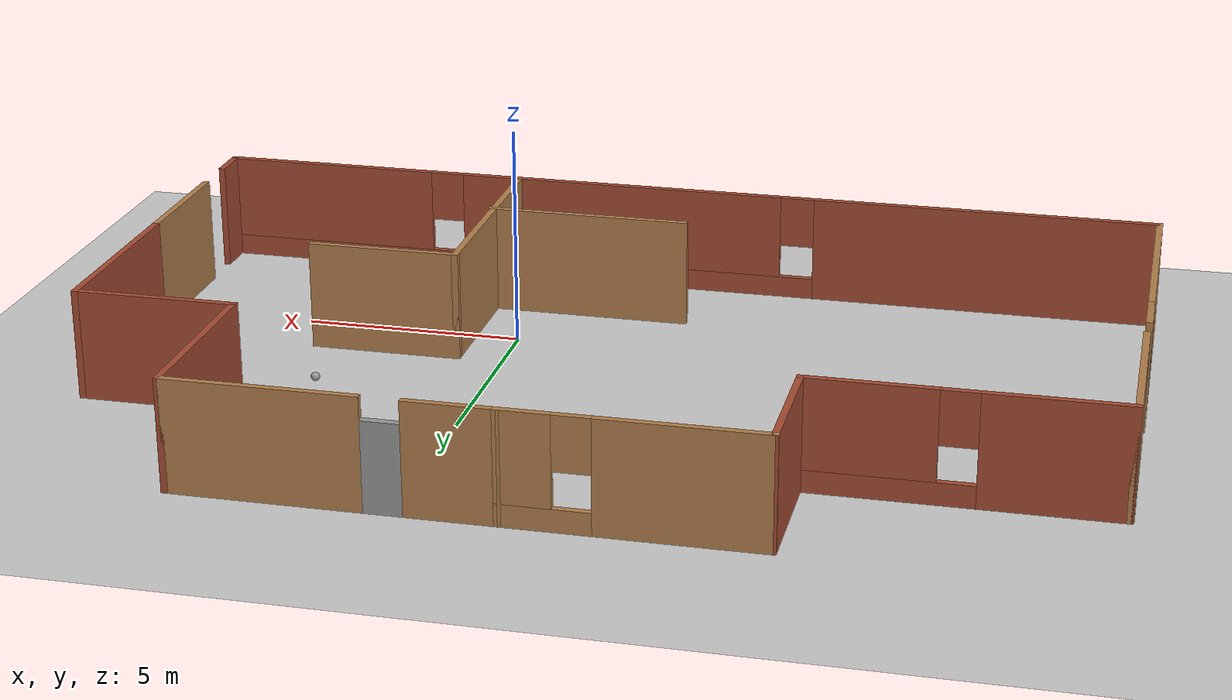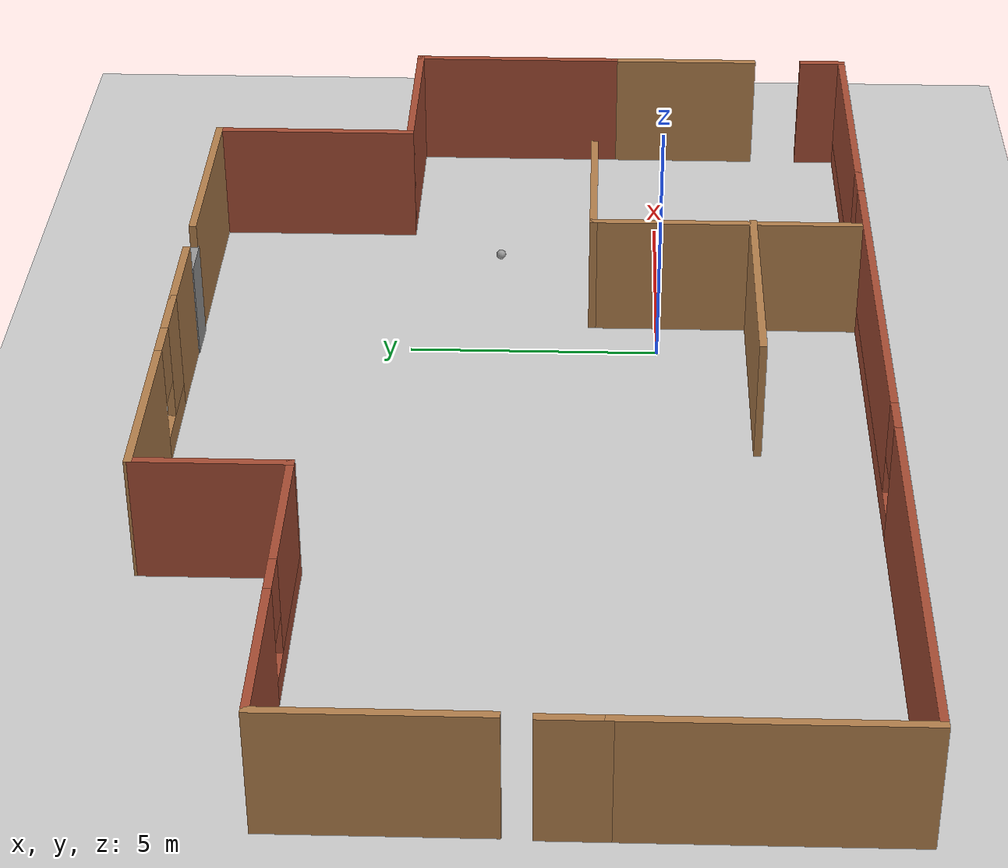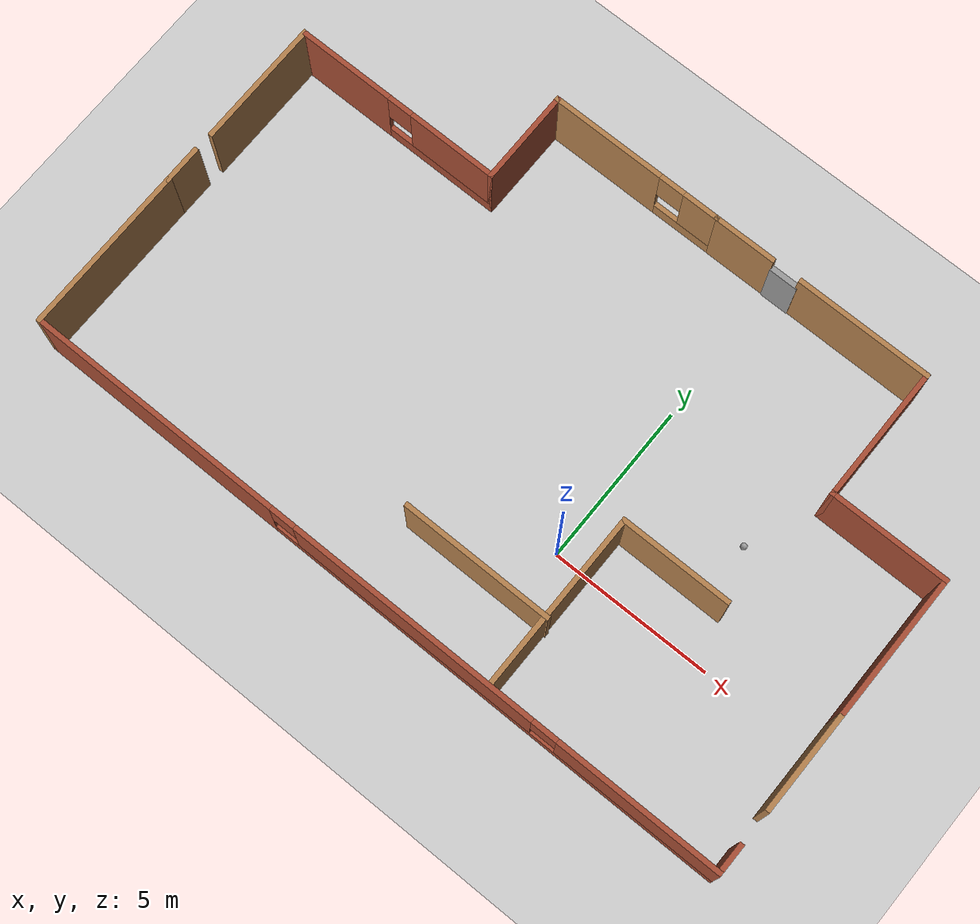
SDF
<sdf version="1.6">
 <world name="default">
  <plugin name="welcome_message" filename="libwelcome_message.so"/>
  <light name="sun" type="directional">
   <pose>0 0 10 0 -0 0</pose>
   <diffuse>0.8 0.8 0.8 1</diffuse>
   <specular>0.2 0.2 0.2 1</specular>
   <attenuation>
    <range>1000</range>
    <constant>0.9</constant>
    <linear>0.01</linear>
    <quadratic>0.001</quadratic>
   </attenuation>
   <direction>-0.5 0.1 -0.9</direction>
  </light>
  <model name="ground_plane">
   <static>1</static>
   <link name="link">
    <collision name="collision">
     <geometry><plane><normal>0 0 1</normal><size>100 100</size></plane></geometry>
     <surface>
      <contact><collide_bitmask>65535</collide_bitmask></contact>
      <friction><ode><mu>100</mu><mu2>50</mu2></ode></friction>
     </surface>
    </collision>
    <visual name="visual">
     <cast_shadows>0</cast_shadows>
     <geometry><plane><normal>0 0 1</normal><size>100 100</size></plane></geometry>
     <material>
      <script><uri>file://media/materials/scripts/gazebo.material</uri><name>Gazebo/Grey</name></script>
     </material>
    </visual>
   </link>
  </model>
  <gravity>0 0 -9.8</gravity>
  <magnetic_field>6e-06 2.3e-05 -4.2e-05</magnetic_field>
  <atmosphere type="adiabatic"/>
  <physics name="default_physics" default="0" type="ode">
   <max_step_size>0.001</max_step_size>
   <real_time_factor>1</real_time_factor>
   <real_time_update_rate>1000</real_time_update_rate>
  </physics>
  <scene><ambient>0.4 0.4 0.4 1</ambient><background>0.7 0.7 0.7 1</background><shadows>1</shadows></scene>
  <spherical_coordinates>
   <surface_model>EARTH_WGS84</surface_model>
   <latitude_deg>0</latitude_deg>
   <longitude_deg>0</longitude_deg>
   <elevation>0</elevation>
   <heading_deg>0</heading_deg>
  </spherical_coordinates>
  <model name="layout_bare">
   <pose>-2.93829 2.61568 0 0 -0 0</pose>
   <link name="Door_2">
    <collision name="Door_2_Collision">
     <geometry><box><size>0.9 0.17 2</size></box></geometry>
     <pose>0 0 1 0 -0 0</pose>
    </collision>
    <visual name="Door_2_Visual">
     <pose>0 0 1 0 -0 0</pose>
     <geometry><box><size>0.9 0.17 2</size></box></geometry>
     <material>
      <script><uri>file://media/materials/scripts/gazebo.material</uri><name>Gazebo/Grey</name></script>
     </material>
    </visual>
    <pose>3.13116 6.76354 0 0 -0 0</pose>
   </link>
   <link name="Wall_10">
    <collision name="Wall_10_Collision">
     <geometry><box><size>4.25 0.15 2.5</size></box></geometry>
     <pose>0 0 1.25 0 -0 0</pose>
    </collision>
    <visual name="Wall_10_Visual">
     <pose>0 0 1.25 0 -0 0</pose>
     <geometry><box><size>4.25 0.15 2.5</size></box></geometry>
     <material>
      <script><uri>file://media/materials/scripts/gazebo.material</uri><name>Gazebo/Wood</name></script>
      <ambient>1 1 1 1</ambient>
     </material>
     <meta><layer>0</layer></meta>
    </visual>
    <pose>5.65 6.77497 0 0 -0 0</pose>
   </link>
   <link name="Wall_11">
    <collision name="Wall_11_Collision">
     <geometry><box><size>4.25 0.15 2.5</size></box></geometry>
     <pose>0 0 1.25 0 -0 0</pose>
    </collision>
    <visual name="Wall_11_Visual">
     <pose>0 0 1.25 0 -0 0</pose>
     <geometry><box><size>4.25 0.15 2.5</size></box></geometry>
     <material>
      <script><uri>file://media/materials/scripts/gazebo.material</uri><name>Gazebo/Bricks</name></script>
      <ambient>1 1 1 1</ambient>
     </material>
     <meta><layer>0</layer></meta>
    </visual>
    <pose>7.7 4.72497 0 0 0 -1.5708</pose>
   </link>
   <link name="Wall_12">
    <collision name="Wall_12_Collision">
     <geometry><box><size>3.75 0.15 2.5</size></box></geometry>
     <pose>0 0 1.25 0 -0 0</pose>
    </collision>
    <visual name="Wall_12_Visual">
     <pose>0 0 1.25 0 -0 0</pose>
     <geometry><box><size>3.75 0.15 2.5</size></box></geometry>
     <material>
      <script><uri>file://media/materials/scripts/gazebo.material</uri><name>Gazebo/Bricks</name></script>
      <ambient>1 1 1 1</ambient>
     </material>
     <meta><layer>0</layer></meta>
    </visual>
    <pose>9.5 2.67497 0 0 -0 0</pose>
   </link>
   <link name="Wall_13">
    <collision name="Wall_13_Collision">
     <geometry><box><size>4.5 0.15 2.5</size></box></geometry>
     <pose>0 0 1.25 0 -0 0</pose>
    </collision>
    <visual name="Wall_13_Visual">
     <pose>0 0 1.25 0 -0 0</pose>
     <geometry><box><size>4.5 0.15 2.5</size></box></geometry>
     <material>
      <script><uri>file://media/materials/scripts/gazebo.material</uri><name>Gazebo/Bricks</name></script>
      <ambient>1 1 1 1</ambient>
     </material>
     <meta><layer>0</layer></meta>
    </visual>
    <pose>11.3 0.499974 0 0 0 -1.5708</pose>
   </link>
   <link name="Wall_15">
    <collision name="Wall_15_Collision">
     <geometry><box><size>1.25 0.15 2.5</size></box></geometry>
     <pose>0 0 1.25 0 -0 0</pose>
    </collision>
    <visual name="Wall_15_Visual">
     <pose>0 0 1.25 0 -0 0</pose>
     <geometry><box><size>1.25 0.15 2.5</size></box></geometry>
     <material>
      <script><uri>file://media/materials/scripts/gazebo.material</uri><name>Gazebo/Wood</name></script>
      <ambient>1 1 1 1</ambient>
     </material>
     <meta><layer>0</layer></meta>
    </visual>
    <pose>-11.3 -1.12503 0 0 -0 1.5708</pose>
   </link>
   <link name="Wall_17">
    <collision name="Wall_17_Collision">
     <geometry><box><size>4 0.15 2.5</size></box></geometry>
     <pose>0 0 1.25 0 -0 0</pose>
    </collision>
    <visual name="Wall_17_Visual">
     <pose>0 0 1.25 0 -0 0</pose>
     <geometry><box><size>4 0.15 2.5</size></box></geometry>
     <material>
      <script><uri>file://media/materials/scripts/gazebo.material</uri><name>Gazebo/Wood</name></script>
      <ambient>1 1 1 1</ambient>
     </material>
     <meta><layer>0</layer></meta>
    </visual>
    <pose>-11.2701 1.99614 0 0 -0 1.5708</pose>
   </link>
   <link name="Wall_18">
    <pose>-7.97011 3.92114 0 0 -0 0</pose>
    <visual name="Wall_18_Visual_0">
     <pose>-1.82628 0 1.25 0 -0 0</pose>
     <geometry><box><size>3.09743 0.15 2.5</size></box></geometry>
     <material>
      <script><uri>file://media/materials/scripts/gazebo.material</uri><name>Gazebo/Bricks</name></script>
      <ambient>1 1 1 1</ambient>
     </material>
     <meta><layer>0</layer></meta>
    </visual>
    <collision name="Wall_18_Collision_0">
     <geometry><box><size>3.09743 0.15 2.5</size></box></geometry>
     <pose>-1.82628 0 1.25 0 -0 0</pose>
    </collision>
    <visual name="Wall_18_Visual_1">
     <pose>1.54872 0 0.25 0 -0 0</pose>
     <geometry><box><size>3.65257 0.15 0.5</size></box></geometry>
     <material>
      <script><uri>file://media/materials/scripts/gazebo.material</uri><name>Gazebo/Bricks</name></script>
      <ambient>1 1 1 1</ambient>
     </material>
     <meta><layer>0</layer></meta>
    </visual>
    <collision name="Wall_18_Collision_1">
     <geometry><box><size>3.65257 0.15 0.5</size></box></geometry>
     <pose>1.54872 0 0.25 0 -0 0</pose>
    </collision>
    <visual name="Wall_18_Visual_2">
     <pose>1.94872 0 1.5 0 -0 0</pose>
     <geometry><box><size>2.85256 0.15 2</size></box></geometry>
     <material>
      <script><uri>file://media/materials/scripts/gazebo.material</uri><name>Gazebo/Bricks</name></script>
      <ambient>1 1 1 1</ambient>
     </material>
     <meta><layer>0</layer></meta>
    </visual>
    <collision name="Wall_18_Collision_2">
     <geometry><box><size>2.85256 0.15 2</size></box></geometry>
     <pose>1.94872 0 1.5 0 -0 0</pose>
    </collision>
    <visual name="Wall_18_Visual_3">
     <pose>0.122435 0 1.9 0 -0 0</pose>
     <geometry><box><size>0.8 0.15 1.2</size></box></geometry>
     <material>
      <script><uri>file://media/materials/scripts/gazebo.material</uri><name>Gazebo/Bricks</name></script>
      <ambient>1 1 1 1</ambient>
     </material>
     <meta><layer>0</layer></meta>
    </visual>
    <collision name="Wall_18_Collision_3">
     <geometry><box><size>0.8 0.15 1.2</size></box></geometry>
     <pose>0.122435 0 1.9 0 -0 0</pose>
    </collision>
   </link>
   <link name="Wall_19">
    <collision name="Wall_19_Collision">
     <geometry><box><size>3 0.15 2.5</size></box></geometry>
     <pose>0 0 1.25 0 -0 0</pose>
    </collision>
    <visual name="Wall_19_Visual">
     <pose>0 0 1.25 0 -0 0</pose>
     <geometry><box><size>3 0.15 2.5</size></box></geometry>
     <material>
      <script><uri>file://media/materials/scripts/gazebo.material</uri><name>Gazebo/Bricks</name></script>
      <ambient>1 1 1 1</ambient>
     </material>
     <meta><layer>0</layer></meta>
    </visual>
    <pose>-4.67011 5.34614 0 0 -0 1.5708</pose>
   </link>
   <link name="Wall_21">
    <pose>-1.94728 6.77306 0 0 -0 0.000703</pose>
    <visual name="Wall_21_Visual_0">
     <pose>-0.986881 0 1.25 0 -0 0</pose>
     <geometry><box><size>3.62188 0.15 2.5</size></box></geometry>
     <material>
      <script><uri>file://media/materials/scripts/gazebo.material</uri><name>Gazebo/Wood</name></script>
      <ambient>1 1 1 1</ambient>
     </material>
     <meta><layer>0</layer></meta>
    </visual>
    <collision name="Wall_21_Collision_0">
     <geometry><box><size>3.62188 0.15 2.5</size></box></geometry>
     <pose>-0.986881 0 1.25 0 -0 0</pose>
    </collision>
    <visual name="Wall_21_Visual_1">
     <pose>1.81094 0 0.25 0 -0 0</pose>
     <geometry><box><size>1.97376 0.15 0.5</size></box></geometry>
     <material>
      <script><uri>file://media/materials/scripts/gazebo.material</uri><name>Gazebo/Wood</name></script>
      <ambient>1 1 1 1</ambient>
     </material>
     <meta><layer>0</layer></meta>
    </visual>
    <collision name="Wall_21_Collision_1">
     <geometry><box><size>1.97376 0.15 0.5</size></box></geometry>
     <pose>1.81094 0 0.25 0 -0 0</pose>
    </collision>
    <visual name="Wall_21_Visual_2">
     <pose>2.21094 0 1.5 0 -0 0</pose>
     <geometry><box><size>1.17376 0.15 2</size></box></geometry>
     <material>
      <script><uri>file://media/materials/scripts/gazebo.material</uri><name>Gazebo/Wood</name></script>
      <ambient>1 1 1 1</ambient>
     </material>
     <meta><layer>0</layer></meta>
    </visual>
    <collision name="Wall_21_Collision_2">
     <geometry><box><size>1.17376 0.15 2</size></box></geometry>
     <pose>2.21094 0 1.5 0 -0 0</pose>
    </collision>
    <visual name="Wall_21_Visual_3">
     <pose>1.22406 0 1.9 0 -0 0</pose>
     <geometry><box><size>0.8 0.15 1.2</size></box></geometry>
     <material>
      <script><uri>file://media/materials/scripts/gazebo.material</uri><name>Gazebo/Wood</name></script>
      <ambient>1 1 1 1</ambient>
     </material>
     <meta><layer>0</layer></meta>
    </visual>
    <collision name="Wall_21_Collision_3">
     <geometry><box><size>0.8 0.15 1.2</size></box></geometry>
     <pose>1.22406 0 1.9 0 -0 0</pose>
    </collision>
   </link>
   <link name="Wall_23">
    <collision name="Wall_23_Collision">
     <geometry><box><size>5.25 0.15 2.5</size></box></geometry>
     <pose>0 0 1.25 0 -0 0</pose>
    </collision>
    <visual name="Wall_23_Visual">
     <pose>0 0 1.25 0 -0 0</pose>
     <geometry><box><size>5.25 0.15 2.5</size></box></geometry>
     <material>
      <script><uri>file://media/materials/scripts/gazebo.material</uri><name>Gazebo/Wood</name></script>
      <ambient>1 1 1 1</ambient>
     </material>
     <meta><layer>0</layer></meta>
    </visual>
    <pose>-11.3 -4.22503 0 0 0 -1.5708</pose>
   </link>
   <link name="Wall_24">
    <pose>0 -6.77503 0 0 -0 0</pose>
    <visual name="Wall_24_Visual_0">
     <pose>-7.31725 0 1.25 0 -0 0</pose>
     <geometry><box><size>8.11549 0.15 2.5</size></box></geometry>
     <material>
      <script><uri>file://media/materials/scripts/gazebo.material</uri><name>Gazebo/Bricks</name></script>
      <ambient>1 1 1 1</ambient>
     </material>
     <meta><layer>0</layer></meta>
    </visual>
    <collision name="Wall_24_Collision_0">
     <geometry><box><size>8.11549 0.15 2.5</size></box></geometry>
     <pose>-7.31725 0 1.25 0 -0 0</pose>
    </collision>
    <visual name="Wall_24_Visual_1">
     <pose>4.05775 0 0.25 0 -0 0</pose>
     <geometry><box><size>14.6345 0.15 0.5</size></box></geometry>
     <material>
      <script><uri>file://media/materials/scripts/gazebo.material</uri><name>Gazebo/Bricks</name></script>
      <ambient>1 1 1 1</ambient>
     </material>
     <meta><layer>0</layer></meta>
    </visual>
    <collision name="Wall_24_Collision_1">
     <geometry><box><size>14.6345 0.15 0.5</size></box></geometry>
     <pose>4.05775 0 0.25 0 -0 0</pose>
    </collision>
    <visual name="Wall_24_Visual_2">
     <pose>1.46491 0 1.5 0 -0 0</pose>
     <geometry><box><size>7.84884 0.15 2</size></box></geometry>
     <material>
      <script><uri>file://media/materials/scripts/gazebo.material</uri><name>Gazebo/Bricks</name></script>
      <ambient>1 1 1 1</ambient>
     </material>
     <meta><layer>0</layer></meta>
    </visual>
    <collision name="Wall_24_Collision_2">
     <geometry><box><size>7.84884 0.15 2</size></box></geometry>
     <pose>1.46491 0 1.5 0 -0 0</pose>
    </collision>
    <visual name="Wall_24_Visual_3">
     <pose>8.78217 0 1.5 0 -0 0</pose>
     <geometry><box><size>5.18567 0.15 2</size></box></geometry>
     <material>
      <script><uri>file://media/materials/scripts/gazebo.material</uri><name>Gazebo/Bricks</name></script>
      <ambient>1 1 1 1</ambient>
     </material>
     <meta><layer>0</layer></meta>
    </visual>
    <collision name="Wall_24_Collision_3">
     <geometry><box><size>5.18567 0.15 2</size></box></geometry>
     <pose>8.78217 0 1.5 0 -0 0</pose>
    </collision>
    <visual name="Wall_24_Visual_4">
     <pose>-2.85951 0 1.9 0 -0 0</pose>
     <geometry><box><size>0.8 0.15 1.2</size></box></geometry>
     <material>
      <script><uri>file://media/materials/scripts/gazebo.material</uri><name>Gazebo/Bricks</name></script>
      <ambient>1 1 1 1</ambient>
     </material>
     <meta><layer>0</layer></meta>
    </visual>
    <collision name="Wall_24_Collision_4">
     <geometry><box><size>0.8 0.15 1.2</size></box></geometry>
     <pose>-2.85951 0 1.9 0 -0 0</pose>
    </collision>
    <visual name="Wall_24_Visual_5">
     <pose>5.78933 0 1.9 0 -0 0</pose>
     <geometry><box><size>0.8 0.15 1.2</size></box></geometry>
     <material>
      <script><uri>file://media/materials/scripts/gazebo.material</uri><name>Gazebo/Bricks</name></script>
      <ambient>1 1 1 1</ambient>
     </material>
     <meta><layer>0</layer></meta>
    </visual>
    <collision name="Wall_24_Collision_5">
     <geometry><box><size>0.8 0.15 1.2</size></box></geometry>
     <pose>5.78933 0 1.9 0 -0 0</pose>
    </collision>
   </link>
   <link name="Wall_25">
    <collision name="Wall_25_Collision">
     <geometry><box><size>1 0.15 2.5</size></box></geometry>
     <pose>0 0 1.25 0 -0 0</pose>
    </collision>
    <visual name="Wall_25_Visual">
     <pose>0 0 1.25 0 -0 0</pose>
     <geometry><box><size>1 0.15 2.5</size></box></geometry>
     <material>
      <script><uri>file://media/materials/scripts/gazebo.material</uri><name>Gazebo/Bricks</name></script>
      <ambient>1 1 1 1</ambient>
     </material>
     <meta><layer>0</layer></meta>
    </visual>
    <pose>11.3 -6.35003 0 0 -0 1.5708</pose>
   </link>
   <link name="Wall_27">
    <collision name="Wall_27_Collision">
     <geometry><box><size>3.25 0.15 2.5</size></box></geometry>
     <pose>0 0 1.25 0 -0 0</pose>
    </collision>
    <visual name="Wall_27_Visual">
     <pose>0 0 1.25 0 -0 0</pose>
     <geometry><box><size>3.25 0.15 2.5</size></box></geometry>
     <material>
      <script><uri>file://media/materials/scripts/gazebo.material</uri><name>Gazebo/Wood</name></script>
      <ambient>1 1 1 1</ambient>
     </material>
     <meta><layer>0</layer></meta>
    </visual>
    <pose>11.3 -3.22503 0 0 0 -1.5708</pose>
   </link>
   <link name="Wall_29">
    <collision name="Wall_29_Collision">
     <geometry><box><size>5.5 0.15 2.5</size></box></geometry>
     <pose>0 0 1.25 0 -0 0</pose>
    </collision>
    <visual name="Wall_29_Visual">
     <pose>0 0 1.25 0 -0 0</pose>
     <geometry><box><size>5.5 0.15 2.5</size></box></geometry>
     <material>
      <script><uri>file://media/materials/scripts/gazebo.material</uri><name>Gazebo/Wood</name></script>
      <ambient>1 1 1 1</ambient>
     </material>
     <meta><layer>0</layer></meta>
    </visual>
    <pose>3.97911 -3.95656 0 0 0 -1.5708</pose>
   </link>
   <link name="Wall_31">
    <collision name="Wall_31_Collision">
     <geometry><box><size>3.5 0.15 2.5</size></box></geometry>
     <pose>0 0 1.25 0 -0 0</pose>
    </collision>
    <visual name="Wall_31_Visual">
     <pose>0 0 1.25 0 -0 0</pose>
     <geometry><box><size>3.5 0.15 2.5</size></box></geometry>
     <material>
      <script><uri>file://media/materials/scripts/gazebo.material</uri><name>Gazebo/Wood</name></script>
      <ambient>1 1 1 1</ambient>
     </material>
     <meta><layer>0</layer></meta>
    </visual>
    <pose>5.65411 -1.28156 0 0 -0 0</pose>
   </link>
   <link name="Wall_33">
    <collision name="Wall_33_Collision">
     <geometry><box><size>4.75 0.15 2.5</size></box></geometry>
     <pose>0 0 1.25 0 -0 0</pose>
    </collision>
    <visual name="Wall_33_Visual">
     <pose>0 0 1.25 0 -0 0</pose>
     <geometry><box><size>4.75 0.15 2.5</size></box></geometry>
     <material>
      <script><uri>file://media/materials/scripts/gazebo.material</uri><name>Gazebo/Wood</name></script>
      <ambient>1 1 1 1</ambient>
     </material>
     <meta><layer>0</layer></meta>
    </visual>
    <pose>1.71934 -4.49974 0 0 -0 3.14159</pose>
   </link>
   <link name="Wall_8">
    <collision name="Wall_8_Collision">
     <geometry><box><size>2 0.15 2.5</size></box></geometry>
     <pose>0 0 1.25 0 -0 0</pose>
    </collision>
    <visual name="Wall_8_Visual">
     <pose>0 0 1.25 0 -0 0</pose>
     <geometry><box><size>2 0.15 2.5</size></box></geometry>
     <material>
      <script><uri>file://media/materials/scripts/gazebo.material</uri><name>Gazebo/Wood</name></script>
      <ambient>1 1 1 1</ambient>
     </material>
     <meta><layer>0</layer></meta>
    </visual>
    <pose>1.70054 6.77497 0 0 -0 0</pose>
   </link>
   <static>1</static>
  </model>
  <model name="my_ball">
   <link name="link_0">
    <inertial>
     <mass>1</mass>
     <inertia><ixx>0.1</ixx><ixy>0</ixy><ixz>0</ixz><iyy>0.1</iyy><iyz>0</iyz><izz>0.1</izz></inertia>
    </inertial>
    <visual name="visual">
     <geometry><sphere><radius>0.1</radius></sphere></geometry>
     <material>
      <lighting>1</lighting>
      <script><uri>file://media/materials/scripts/gazebo.material</uri><name>Gazebo/Grey</name></script>
      <shader type="pixel"><normal_map>__default__</normal_map></shader>
      <ambient>1 1 1 1</ambient>
      <diffuse>1 1 1 1</diffuse>
      <specular>1 1 1 1</specular>
      <emissive>1 1 1 1</emissive>
     </material>
    </visual>
    <collision name="collision">
     <geometry><sphere><radius>0.1</radius></sphere></geometry>
     <surface>
      <friction>
       <ode><mu>1</mu><mu2>1</mu2><fdir1>0 0 0</fdir1><slip1>0</slip1><slip2>0</slip2></ode>
       <torsional>
        <coefficient>1</coefficient>
        <patch_radius>0</patch_radius>
        <surface_radius>0</surface_radius>
        <use_patch_radius>1</use_patch_radius>
        <ode><slip>0</slip></ode>
       </torsional>
      </friction>
      <bounce><restitution_coefficient>0</restitution_coefficient><threshold>1e+06</threshold></bounce>
      <contact>
       <collide_without_contact>0</collide_without_contact>
       <collide_without_contact_bitmask>1</collide_without_contact_bitmask>
       <collide_bitmask>1</collide_bitmask>
       <ode>
        <soft_cfm>0</soft_cfm>
        <soft_erp>0.2</soft_erp>
        <kp>1e+13</kp>
        <kd>1</kd>
        <max_vel>0.01</max_vel>
        <min_depth>0</min_depth>
       </ode>
       <bullet>
        <split_impulse>1</split_impulse>
        <split_impulse_penetration_threshold>-0.01</split_impulse_penetration_threshold>
        <soft_cfm>0</soft_cfm>
        <soft_erp>0.2</soft_erp>
        <kp>1e+13</kp>
        <kd>1</kd>
       </bullet>
      </contact>
     </surface>
    </collision>
   </link>
   <static>0</static>
   <pose>3.738 3.314 0.1 0 -0 0</pose>
  </model>
 </world>
</sdf>
